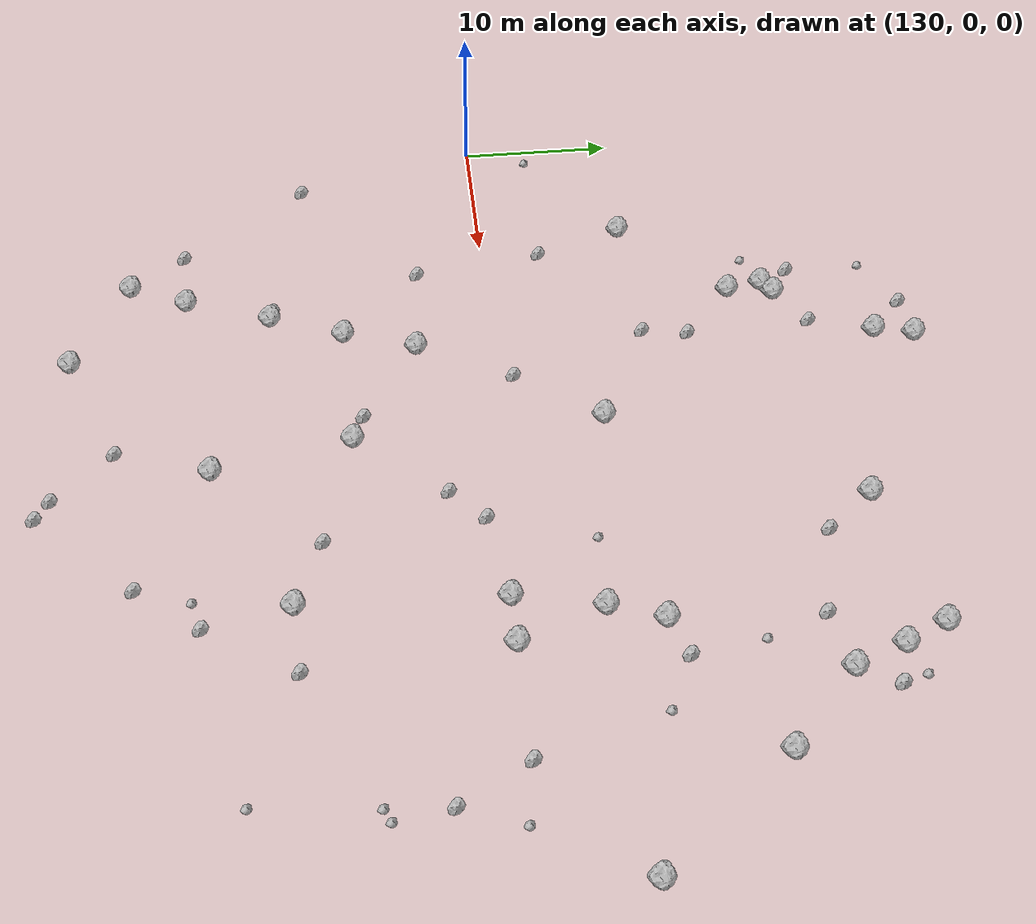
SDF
<sdf version="1.6">
 <world name="default">
  <include><uri>model://sun</uri></include>
  <model name="rock1_4_1">
   <include><uri>model://rock1</uri><pose>171.4775280185193 4.452637720306946 0.5 0 0 0</pose></include>
  </model>
  <model name="rock1_4_2">
   <include><uri>model://rock1</uri><pose>173.5609461046763 -0.8699509802781478 0.5 0 0 0</pose></include>
  </model>
  <model name="rock1_4_3">
   <include><uri>model://rock1</uri><pose>176.99204717141868 17.619096484142467 0.5 0 0 0</pose></include>
  </model>
  <model name="rock1_4_4">
   <include><uri>model://rock1</uri><pose>150.71610680406604 24.943660760159034 0.5 0 0 0</pose></include>
  </model>
  <model name="rock1_4_5">
   <include><uri>model://rock1</uri><pose>157.2666196204471 -9.416932633370486 0.5 0 0 0</pose></include>
  </model>
  <model name="rock1_4_6">
   <include><uri>model://rock1</uri><pose>144.04495169673467 -19.912519006429754 0.5 0 0 0</pose></include>
  </model>
  <model name="rock1_4_7">
   <include><uri>model://rock1</uri><pose>174.42588078703488 23.493013798605446 0.5 0 0 0</pose></include>
  </model>
  <model name="rock1_4_8">
   <include><uri>model://rock1</uri><pose>151.28659719510983 27.47069577525889 0.5 0 0 0</pose></include>
  </model>
  <model name="rock1_4_9">
   <include><uri>model://rock1</uri><pose>170.31088615303648 -0.9114223911167016 0.5 0 0 0</pose></include>
  </model>
  <model name="rock1_4_10">
   <include><uri>model://rock1</uri><pose>175.69170759510473 20.824250808498242 0.5 0 0 0</pose></include>
  </model>
  <model name="rock1_4_11">
   <include><uri>model://rock1</uri><pose>149.4987650503305 -4.986074791358185 0.5 0 0 0</pose></include>
  </model>
  <model name="rock1_4_12">
   <include><uri>model://rock1</uri><pose>181.95543953879456 13.17222053869014 0.5 0 0 0</pose></include>
  </model>
  <model name="rock1_4_13">
   <include><uri>model://rock1</uri><pose>146.5429212319154 19.062899691850312 0.5 0 0 0</pose></include>
  </model>
  <model name="rock1_4_14">
   <include><uri>model://rock1</uri><pose>145.56732647612816 18.388192698237994 0.5 0 0 0</pose></include>
  </model>
  <model name="rock1_4_15">
   <include><uri>model://rock1</uri><pose>156.69095937793574 6.341532757770452 0.5 0 0 0</pose></include>
  </model>
  <model name="rock1_4_16">
   <include><uri>model://rock1</uri><pose>147.9575317593363 -9.64913931558964 0.5 0 0 0</pose></include>
  </model>
  <model name="rock1_4_17">
   <include><uri>model://rock1</uri><pose>142.31308094588312 -23.625996080400427 0.5 0 0 0</pose></include>
  </model>
  <model name="rock1_4_18">
   <include><uri>model://rock1</uri><pose>164.51785221975047 21.45513956568621 0.5 0 0 0</pose></include>
  </model>
  <model name="rock1_4_19">
   <include><uri>model://rock1</uri><pose>146.0510674737353 -14.4040884046838 0.5 0 0 0</pose></include>
  </model>
  <model name="rock1_4_20">
   <include><uri>model://rock1</uri><pose>146.0232441599578 16.07304734540984 0.5 0 0 0</pose></include>
  </model>
  <model name="rock1_4_21">
   <include><uri>model://rock1</uri><pose>149.1290890121345 -27.250054178327428 0.5 0 0 0</pose></include>
  </model>
  <model name="rock1_4_22">
   <include><uri>model://rock1</uri><pose>159.1624953181225 -18.165288803735365 0.5 0 0 0</pose></include>
  </model>
  <model name="rock1_4_23">
   <include><uri>model://rock1</uri><pose>172.67907947731084 7.760611516956914 0.5 0 0 0</pose></include>
  </model>
  <model name="rock1_4_24">
   <include><uri>model://rock1</uri><pose>139.37589019430592 9.60301615039954 0.5 0 0 0</pose></include>
  </model>
  <model name="rock1_4_25">
   <include><uri>model://rock1</uri><pose>169.8412490676116 -13.332802984201848 0.5 0 0 0</pose></include>
  </model>
  <model name="rock1_4_26">
   <include><uri>model://rock1</uri><pose>188.86615160220578 4.889281393976617 0.5 0 0 0</pose></include>
  </model>
  <model name="rock2_4_0">
   <include><uri>model://rock2</uri><pose>173.11210127828662 16.942011790187273 0.3 0 0 0</pose></include>
  </model>
  <model name="rock2_4_1">
   <include><uri>model://rock2</uri><pose>141.32434212154968 3.892315325875188 0.3 0 0 0</pose></include>
  </model>
  <model name="rock2_4_2">
   <include><uri>model://rock2</uri><pose>160.6208162520512 -27.708183668856723 0.3 0 0 0</pose></include>
  </model>
  <model name="rock2_4_3">
   <include><uri>model://rock2</uri><pose>183.73446674116022 -5.109976683371968 0.3 0 0 0</pose></include>
  </model>
  <model name="rock2_4_4">
   <include><uri>model://rock2</uri><pose>170.97083172010042 -18.561237767519188 0.3 0 0 0</pose></include>
  </model>
  <model name="rock2_4_5">
   <include><uri>model://rock2</uri><pose>133.3261408937891 -12.021369498862928 0.3 0 0 0</pose></include>
  </model>
  <model name="rock2_4_6">
   <include><uri>model://rock2</uri><pose>142.6054380069076 -4.473431717578766 0.3 0 0 0</pose></include>
  </model>
  <model name="rock2_4_7">
   <include><uri>model://rock2</uri><pose>155.39988373922606 -8.662560207586658 0.3 0 0 0</pose></include>
  </model>
  <model name="rock2_4_8">
   <include><uri>model://rock2</uri><pose>165.28894556218722 -11.500644657060214 0.3 0 0 0</pose></include>
  </model>
  <model name="rock2_4_9">
   <include><uri>model://rock2</uri><pose>164.28895181643733 -1.733272614912586 0.3 0 0 0</pose></include>
  </model>
  <model name="rock2_4_10">
   <include><uri>model://rock2</uri><pose>157.1409501531922 -24.035991781611493 0.3 0 0 0</pose></include>
  </model>
  <model name="rock2_4_11">
   <include><uri>model://rock2</uri><pose>149.850818082612 12.76810562147697 0.3 0 0 0</pose></include>
  </model>
  <model name="rock2_4_12">
   <include><uri>model://rock2</uri><pose>167.87512141668822 -22.463516567309565 0.3 0 0 0</pose></include>
  </model>
  <model name="rock2_4_13">
   <include><uri>model://rock2</uri><pose>149.3705106473344 9.835030634542491 0.3 0 0 0</pose></include>
  </model>
  <model name="rock2_4_14">
   <include><uri>model://rock2</uri><pose>162.05907968572194 -3.818035286006854 0.3 0 0 0</pose></include>
  </model>
  <model name="rock2_4_15">
   <include><uri>model://rock2</uri><pose>144.49698829291708 20.384516720286044 0.3 0 0 0</pose></include>
  </model>
  <model name="rock2_4_16">
   <include><uri>model://rock2</uri><pose>148.2118298536906 27.20161558907496 0.3 0 0 0</pose></include>
  </model>
  <model name="rock2_4_17">
   <include><uri>model://rock2</uri><pose>175.28941765819275 8.704117118046653 0.3 0 0 0</pose></include>
  </model>
  <model name="rock2_4_18">
   <include><uri>model://rock2</uri><pose>167.0675240513268 18.392317325177977 0.3 0 0 0</pose></include>
  </model>
  <model name="rock2_4_19">
   <include><uri>model://rock2</uri><pose>139.54629028691906 -20.108052782359103 0.3 0 0 0</pose></include>
  </model>
  <model name="rock2_4_20">
   <include><uri>model://rock2</uri><pose>178.2719643378491 20.04346596237039 0.3 0 0 0</pose></include>
  </model>
  <model name="rock2_4_21">
   <include><uri>model://rock2</uri><pose>145.30562208421318 -14.197058381617463 0.3 0 0 0</pose></include>
  </model>
  <model name="rock2_4_22">
   <include><uri>model://rock2</uri><pose>161.96744387141152 -28.551758145820823 0.3 0 0 0</pose></include>
  </model>
  <model name="rock2_4_23">
   <include><uri>model://rock2</uri><pose>181.25268861959185 -0.7937832258916373 0.3 0 0 0</pose></include>
  </model>
  <model name="rock2_4_24">
   <include><uri>model://rock2</uri><pose>174.47078688853261 -13.03983405414657 0.3 0 0 0</pose></include>
  </model>
  <model name="rock2_4_25">
   <include><uri>model://rock2</uri><pose>152.667747208329 1.055386053605634 0.3 0 0 0</pose></include>
  </model>
  <model name="rock2_4_26">
   <include><uri>model://rock2</uri><pose>149.4397103579196 20.88342245425975 0.3 0 0 0</pose></include>
  </model>
  <model name="rock3_4_0">
   <include><uri>model://rock3</uri><pose>178.79544480234608 7.0416723441539375 0.2 0 0 0</pose></include>
  </model>
  <model name="rock3_4_1">
   <include><uri>model://rock3</uri><pose>166.34370878282215 4.664929222010706 0.2 0 0 0</pose></include>
  </model>
  <model name="rock3_4_2">
   <include><uri>model://rock3</uri><pose>131.40038669877111 3.9673033118607535 0.2 0 0 0</pose></include>
  </model>
  <model name="rock3_4_3">
   <include><uri>model://rock3</uri><pose>184.27766488544026 -8.548600424150116 0.2 0 0 0</pose></include>
  </model>
  <model name="rock3_4_4">
   <include><uri>model://rock3</uri><pose>174.52775190186225 13.175550054337691 0.2 0 0 0</pose></include>
  </model>
  <model name="rock3_4_5">
   <include><uri>model://rock3</uri><pose>183.44039692683182 -8.93237276297215 0.2 0 0 0</pose></include>
  </model>
  <model name="rock3_4_6">
   <include><uri>model://rock3</uri><pose>177.76133278091186 21.56545800679944 0.2 0 0 0</pose></include>
  </model>
  <model name="rock3_4_7">
   <include><uri>model://rock3</uri><pose>185.13168360715943 -1.4408827357266247 0.2 0 0 0</pose></include>
  </model>
  <model name="rock3_4_8">
   <include><uri>model://rock3</uri><pose>143.14524694312138 17.514541086051842 0.2 0 0 0</pose></include>
  </model>
  <model name="rock3_4_9">
   <include><uri>model://rock3</uri><pose>182.76981313054756 -16.052300133874837 0.2 0 0 0</pose></include>
  </model>
  <model name="rock3_4_10">
   <include><uri>model://rock3</uri><pose>169.00261278752956 -19.13591840840008 0.2 0 0 0</pose></include>
  </model>
  <model name="rock3_4_11">
   <include><uri>model://rock3</uri><pose>144.39362594214495 25.340950095782006 0.2 0 0 0</pose></include>
  </model>
 </world>
</sdf>
